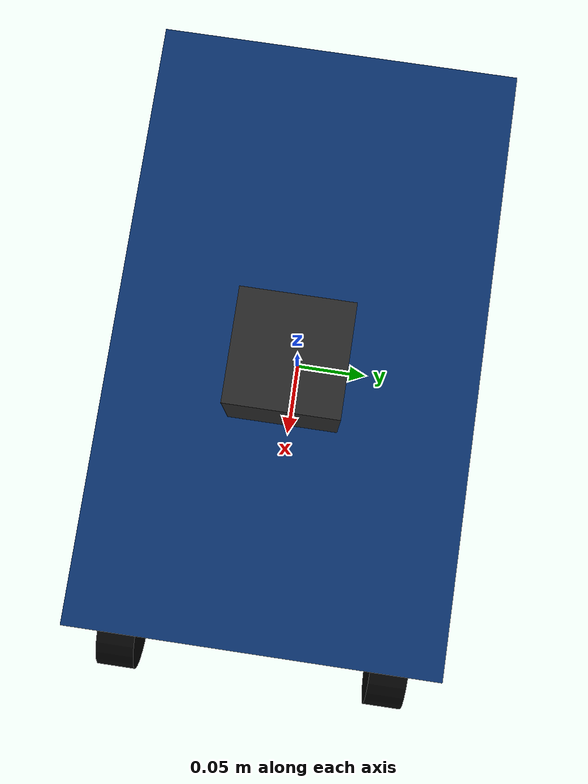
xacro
<?xml version="1.0"?>
<robot name="roboracer" xmlns:xacro="http://www.ros.org/wiki/xacro">
  <xacro:arg name="mid360_downsample" default="2"/>
  <!-- Values mirror vehicle_stable_v3_racelineV3.yaml. -->
  <xacro:property name="wheelbase" value="0.320"/>
  <xacro:property name="track_width" value="0.180"/>
  <xacro:property name="body_length" value="0.400"/>
  <xacro:property name="body_width" value="0.240"/>
  <xacro:property name="wheel_radius" value="0.032"/>

  <link name="base_footprint"/>
  <joint name="base_footprint_joint" type="fixed">
    <parent link="base_footprint"/><child link="base_link"/>
    <origin xyz="0 0 0.060"/>
  </joint>
  <link name="base_link">
    <inertial>
      <origin xyz="0 0 0.014"/>
      <mass value="3.535"/>
      <inertia ixx="0.0180" ixy="0" ixz="0" iyy="0.0520" iyz="0" izz="0.0600"/>
    </inertial>
    <visual><geometry><box size="${body_length} ${body_width} 0.080"/></geometry>
      <material name="v3blue"><color rgba="0.03 0.19 0.42 1"/></material></visual>
    <collision><geometry><box size="${body_length} ${body_width} 0.080"/></geometry></collision>
  </link>

  <xacro:macro name="wheel" params="name x y">
    <link name="${name}">
      <inertial><mass value="0.06625"/><origin xyz="0 0 0"/>
        <inertia ixx="0.00004" ixy="0" ixz="0" iyy="0.00004" iyz="0" izz="0.00002"/></inertial>
      <visual><origin rpy="1.570796 0 0"/><geometry><cylinder radius="${wheel_radius}" length="0.025"/></geometry>
        <material name="rubber"><color rgba="0.03 0.03 0.03 1"/></material></visual>
      <collision><origin rpy="1.570796 0 0"/><geometry><cylinder radius="${wheel_radius}" length="0.025"/></geometry></collision>
    </link>
    <joint name="${name}_joint" type="fixed"><parent link="base_link"/><child link="${name}"/>
      <origin xyz="${x} ${y} -0.028"/></joint>
  </xacro:macro>
  <xacro:wheel name="front_left_wheel" x="0.195" y="0.090"/>
  <xacro:wheel name="front_right_wheel" x="0.195" y="-0.090"/>
  <xacro:wheel name="rear_left_wheel" x="-0.125" y="0.090"/>
  <xacro:wheel name="rear_right_wheel" x="-0.125" y="-0.090"/>

  <link name="livox_frame">
    <inertial><mass value="0.265"/><origin xyz="0 0 0"/>
      <inertia ixx="0.00016" ixy="0" ixz="0" iyy="0.00016" iyz="0" izz="0.00019"/></inertial>
    <visual><geometry><box size="0.065 0.065 0.060"/></geometry>
      <material name="livox"><color rgba="0.15 0.15 0.15 1"/></material></visual>
    <collision><geometry><box size="0.065 0.065 0.060"/></geometry></collision>
  </link>
  <joint name="livox_mount" type="fixed"><parent link="base_link"/><child link="livox_frame"/>
    <origin xyz="0.030 0 0.130"/></joint>

  <gazebo reference="base_link"><material>Gazebo/Blue</material><mu1>1.0489</mu1><mu2>1.0489</mu2></gazebo>
  <gazebo reference="front_left_wheel"><material>Gazebo/Black</material></gazebo>
  <gazebo reference="front_right_wheel"><material>Gazebo/Black</material></gazebo>
  <gazebo reference="rear_left_wheel"><material>Gazebo/Black</material></gazebo>
  <gazebo reference="rear_right_wheel"><material>Gazebo/Black</material></gazebo>

  <!-- Livox MID-360: official non-repetitive scan pattern at 10 Hz. -->
  <gazebo reference="livox_frame">
    <sensor type="ray" name="mid360">
      <always_on>true</always_on><update_rate>10</update_rate><visualize>false</visualize>
      <!-- Keep Gazebo's built-in RaySensor at one ray. The plugin below owns
           the actual non-repetitive ODE ray set. -->
      <ray>
        <scan>
          <horizontal><samples>1</samples><resolution>1</resolution><min_angle>0</min_angle><max_angle>0</max_angle></horizontal>
          <vertical><samples>1</samples><resolution>1</resolution><min_angle>0</min_angle><max_angle>0</max_angle></vertical>
        </scan>
        <range><min>0.10</min><max>40.0</max><resolution>0.02</resolution></range>
      </ray>
      <plugin name="mid360_ros" filename="liblivox_laser_simulation.so">
        <ray>
          <scan>
            <horizontal><samples>100</samples><resolution>1</resolution><min_angle>0</min_angle><max_angle>6.283185307</max_angle></horizontal>
            <vertical><samples>360</samples><resolution>1</resolution><min_angle>-0.126013</min_angle><max_angle>0.963770</max_angle></vertical>
          </scan>
          <range><min>0.10</min><max>40.0</max><resolution>0.02</resolution></range>
        </ray>
        <samples>24000</samples>
        <downsample>$(arg mid360_downsample)</downsample>
        <csv_file_name>package://livox_laser_simulation/scan_mode/mid360.csv</csv_file_name>
        <ros_topic>/livox/lidar</ros_topic>
        <pointcloud_topic>/cloud_registered_body</pointcloud_topic>
        <frame_id>livox_frame</frame_id>
        <body_frame_id>body</body_frame_id>
        <body_offset_x>0.030</body_offset_x>
        <body_offset_y>0.0</body_offset_y>
        <body_offset_z>0.190</body_offset_z>
      </plugin>
    </sensor>
  </gazebo>
</robot>
